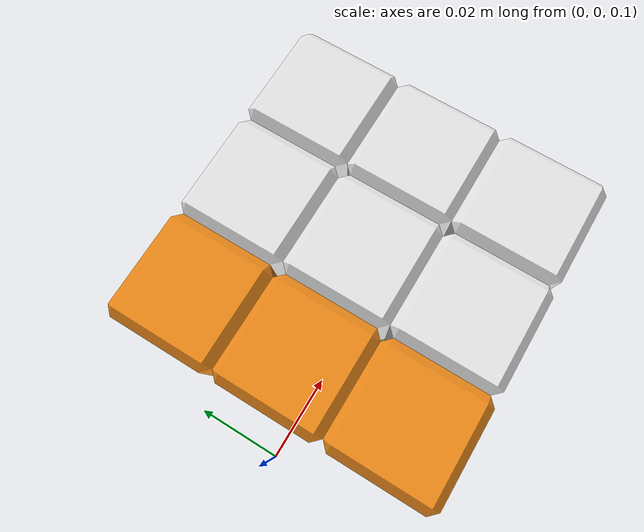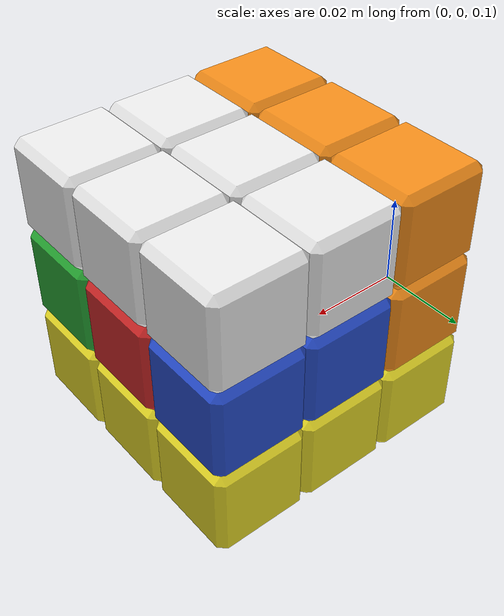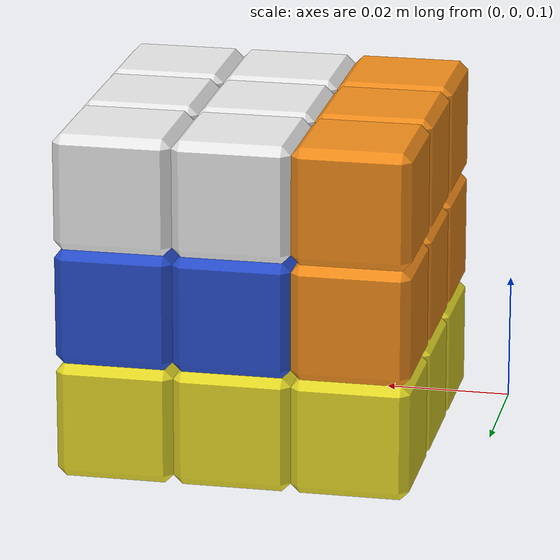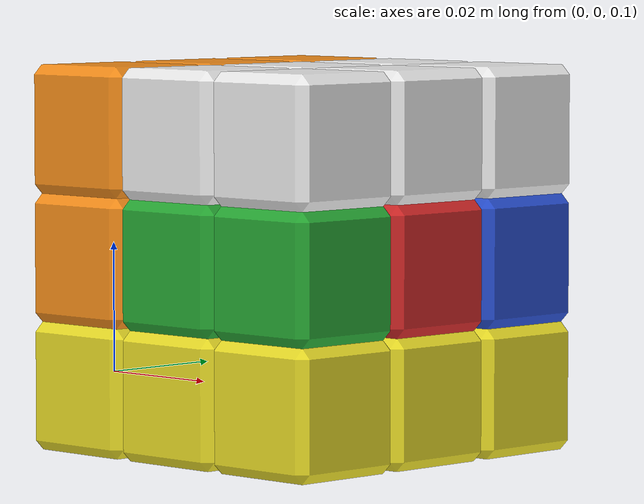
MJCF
<mujoco model="rubiks_cube">
  <compiler angle="radian" autolimits="true"/>
  <size memory="600K"/>

  <default>
    <default class="cubelet">
      <joint type="ball" armature="0.001" damping="0.01" frictionloss="0.001"/>
      <geom type="mesh" condim="3" friction="1.0 0.01 0.001" quat="1 0 0 1"
        mesh="cubelet" solref="0.01 1" solimp="0.9 0.95 0.001"/>
    </default>
    <default class="core_vis">
      <geom type="sphere" contype="0" conaffinity="0" group="4" size="0.01"/>
    </default>
  </default>

  <asset>
    <texture file="assets/white.png"              gridsize="3 4" gridlayout=".....F......"  rgb1="0 0 0"/>
    <texture file="assets/yellow.png"             gridsize="3 4" gridlayout=".....B......"  rgb1="0 0 0"/>
    <texture file="assets/red.png"                gridsize="3 4" gridlayout=".....D......"  rgb1="0 0 0"/>
    <texture file="assets/orange.png"             gridsize="3 4" gridlayout=".....U......"  rgb1="0 0 0"/>
    <texture file="assets/blue.png"               gridsize="3 4" gridlayout=".....R......"  rgb1="0 0 0"/>
    <texture file="assets/green.png"              gridsize="3 4" gridlayout=".....L......"  rgb1="0 0 0"/>
    <texture file="assets/red_white.png"          gridsize="3 4" gridlayout=".....DF....."  rgb1="0 0 0"/>
    <texture file="assets/orange_white.png"       gridsize="3 4" gridlayout=".....UF....."  rgb1="0 0 0"/>
    <texture file="assets/blue_white.png"         gridsize="3 4" gridlayout=".....RF....."  rgb1="0 0 0"/>
    <texture file="assets/green_white.png"        gridsize="3 4" gridlayout=".....LF....."  rgb1="0 0 0"/>
    <texture file="assets/red_yellow.png"         gridsize="3 4" gridlayout=".....DB....."  rgb1="0 0 0"/>
    <texture file="assets/orange_yellow.png"      gridsize="3 4" gridlayout=".....UB....."  rgb1="0 0 0"/>
    <texture file="assets/blue_yellow.png"        gridsize="3 4" gridlayout=".....RB....."  rgb1="0 0 0"/>
    <texture file="assets/green_yellow.png"       gridsize="3 4" gridlayout=".....LB....."  rgb1="0 0 0"/>
    <texture file="assets/orange_red.png"         gridsize="3 4" gridlayout=".....UD....."  rgb1="0 0 0"/>
    <texture file="assets/blue_red.png"           gridsize="3 4" gridlayout=".....RD....."  rgb1="0 0 0"/>
    <texture file="assets/green_red.png"          gridsize="3 4" gridlayout=".....LD....."  rgb1="0 0 0"/>
    <texture file="assets/blue_orange.png"        gridsize="3 4" gridlayout=".....RU....."  rgb1="0 0 0"/>
    <texture file="assets/green_orange.png"       gridsize="3 4" gridlayout=".....LU....."  rgb1="0 0 0"/>
    <texture file="assets/blue_red_white.png"     gridsize="3 4" gridlayout=".....RDF...."  rgb1="0 0 0"/>
    <texture file="assets/green_red_white.png"    gridsize="3 4" gridlayout=".....LDF...."  rgb1="0 0 0"/>
    <texture file="assets/blue_orange_white.png"  gridsize="3 4" gridlayout=".....RUF...."  rgb1="0 0 0"/>
    <texture file="assets/green_orange_white.png" gridsize="3 4" gridlayout=".....LUF...."  rgb1="0 0 0"/>
    <texture file="assets/blue_red_yellow.png"    gridsize="3 4" gridlayout=".....RDB...."  rgb1="0 0 0"/>
    <texture file="assets/green_red_yellow.png"   gridsize="3 4" gridlayout=".....LDB...."  rgb1="0 0 0"/>
    <texture file="assets/blue_orange_yellow.png" gridsize="3 4" gridlayout=".....RUB...."  rgb1="0 0 0"/>
    <texture file="assets/green_orange_yellow.png" gridsize="3 4" gridlayout=".....LUB...." rgb1="0 0 0"/>

    <material name="white"               texture="white"/>
    <material name="yellow"              texture="yellow"/>
    <material name="red"                 texture="red"/>
    <material name="orange"              texture="orange"/>
    <material name="blue"                texture="blue"/>
    <material name="green"               texture="green"/>
    <material name="red_white"           texture="red_white"/>
    <material name="orange_white"        texture="orange_white"/>
    <material name="blue_white"          texture="blue_white"/>
    <material name="green_white"         texture="green_white"/>
    <material name="red_yellow"          texture="red_yellow"/>
    <material name="orange_yellow"       texture="orange_yellow"/>
    <material name="blue_yellow"         texture="blue_yellow"/>
    <material name="green_yellow"        texture="green_yellow"/>
    <material name="orange_red"          texture="orange_red"/>
    <material name="blue_red"            texture="blue_red"/>
    <material name="green_red"           texture="green_red"/>
    <material name="blue_orange"         texture="blue_orange"/>
    <material name="green_orange"        texture="green_orange"/>
    <material name="blue_red_white"      texture="blue_red_white"/>
    <material name="green_red_white"     texture="green_red_white"/>
    <material name="blue_orange_white"   texture="blue_orange_white"/>
    <material name="green_orange_white"  texture="green_orange_white"/>
    <material name="blue_red_yellow"     texture="blue_red_yellow"/>
    <material name="green_red_yellow"    texture="green_red_yellow"/>
    <material name="blue_orange_yellow"  texture="blue_orange_yellow"/>
    <material name="green_orange_yellow" texture="green_orange_yellow"/>

    <mesh name="cubelet"
      vertex="0.008075 0.0095 -0.008075 -0.008075 0.0095 -0.008075 0.008075 0.0095 0.008075 -0.008075 0.0095 0.008075 -0.0095 0.008075 -0.008075 -0.0095 -0.008075 -0.008075 -0.0095 0.008075 0.008075 -0.0095 -0.008075 0.008075 0.008075 -0.0095 -0.008075 0.008075 -0.0095 0.008075 -0.008075 -0.0095 -0.008075 -0.008075 -0.0095 0.008075 0.0095 0.008075 0.008075 0.0095 -0.008075 0.008075 0.0095 0.008075 -0.008075 0.0095 -0.008075 -0.008075 0.008075 0.008075 0.0095 -0.008075 0.008075 0.0095 0.008075 -0.008075 0.0095 -0.008075 -0.008075 0.0095 0.008075 -0.008075 -0.0095 -0.008075 -0.008075 -0.0095 0.008075 0.008075 -0.0095 -0.008075 0.008075 -0.0095"/>
  </asset>

  <worldbody>
    <body name="mocap_anchor" mocap="true" pos="0.04 0.001 0.12" quat="1 0 0 0">
      <geom type="sphere" size="0.005" rgba="0 1 0 0.5" contype="0" conaffinity="0"/>
    </body>
    <body name="core" pos="0.04 0.001 0.12" quat="1 0 0 0" childclass="cubelet">
      <freejoint name="cube_freejoint"/>
      <geom class="core_vis"/>
      <!-- overall collision box for grasping -->
      <geom name="cube_collision" type="box" size="0.0285 0.0285 0.0285" mass="0.108"
            contype="2" conaffinity="2" group="3"/>
      <site name="cube_center" pos="0 0 0" group="4"/>

      <!-- Face centers (hinge joints, passive — no motors) -->
      <body name="pX">
        <joint name="pX" type="hinge" axis="1 0 0"/>
        <geom material="red"    pos="0.019 0 0"/>
      </body>
      <body name="nX">
        <joint name="nX" type="hinge" axis="-1 0 0"/>
        <geom material="orange" pos="-0.019 0 0"/>
      </body>
      <body name="pY">
        <joint name="pY" type="hinge" axis="0 1 0"/>
        <geom material="blue"   pos="0 0.019 0"/>
      </body>
      <body name="nY">
        <joint name="nY" type="hinge" axis="0 -1 0"/>
        <geom material="green"  pos="0 -0.019 0"/>
      </body>
      <body name="pZ">
        <joint name="pZ" type="hinge" axis="0 0 1"/>
        <geom material="white"  pos="0 0 0.019"/>
      </body>
      <body name="nZ">
        <joint name="nZ" type="hinge" axis="0 0 -1"/>
        <geom material="yellow" pos="0 0 -0.019"/>
      </body>

      <!-- Edge pieces (ball joints) -->
      <body name="pX_pY">
        <joint name="pX_pY"/>
        <geom material="blue_red"    pos="0.019 0.019 0"/>
      </body>
      <body name="nY_pX">
        <joint name="nY_pX"/>
        <geom material="green_red"   pos="0.019 -0.019 0"/>
      </body>
      <body name="pX_pZ">
        <joint name="pX_pZ"/>
        <geom material="red_white"   pos="0.019 0 0.019"/>
      </body>
      <body name="nZ_pX">
        <joint name="nZ_pX"/>
        <geom material="red_yellow"  pos="0.019 0 -0.019"/>
      </body>
      <body name="nX_pY">
        <joint name="nX_pY"/>
        <geom material="blue_orange"  pos="-0.019 0.019 0"/>
      </body>
      <body name="nX_nY">
        <joint name="nX_nY"/>
        <geom material="green_orange" pos="-0.019 -0.019 0"/>
      </body>
      <body name="nX_pZ">
        <joint name="nX_pZ"/>
        <geom material="orange_white" pos="-0.019 0 0.019"/>
      </body>
      <body name="nX_nZ">
        <joint name="nX_nZ"/>
        <geom material="orange_yellow" pos="-0.019 0 -0.019"/>
      </body>
      <body name="pY_pZ">
        <joint name="pY_pZ"/>
        <geom material="blue_white"   pos="0 0.019 0.019"/>
      </body>
      <body name="nZ_pY">
        <joint name="nZ_pY"/>
        <geom material="blue_yellow"  pos="0 0.019 -0.019"/>
      </body>
      <body name="nY_pZ">
        <joint name="nY_pZ"/>
        <geom material="green_white"  pos="0 -0.019 0.019"/>
      </body>
      <body name="nY_nZ">
        <joint name="nY_nZ"/>
        <geom material="green_yellow" pos="0 -0.019 -0.019"/>
      </body>

      <!-- Corner pieces (ball joints) -->
      <body name="pX_pY_pZ">
        <joint name="pX_pY_pZ"/>
        <geom material="blue_red_white"      pos="0.019 0.019 0.019"/>
      </body>
      <body name="nZ_pX_pY">
        <joint name="nZ_pX_pY"/>
        <geom material="blue_red_yellow"     pos="0.019 0.019 -0.019"/>
      </body>
      <body name="nY_pX_pZ">
        <joint name="nY_pX_pZ"/>
        <geom material="green_red_white"     pos="0.019 -0.019 0.019"/>
      </body>
      <body name="nY_nZ_pX">
        <joint name="nY_nZ_pX"/>
        <geom material="green_red_yellow"    pos="0.019 -0.019 -0.019"/>
      </body>
      <body name="nX_pY_pZ">
        <joint name="nX_pY_pZ"/>
        <geom material="blue_orange_white"   pos="-0.019 0.019 0.019"/>
      </body>
      <body name="nX_nZ_pY">
        <joint name="nX_nZ_pY"/>
        <geom material="blue_orange_yellow"  pos="-0.019 0.019 -0.019"/>
      </body>
      <body name="nX_nY_pZ">
        <joint name="nX_nY_pZ"/>
        <geom material="green_orange_white"  pos="-0.019 -0.019 0.019"/>
      </body>
      <body name="nX_nY_nZ">
        <joint name="nX_nY_nZ"/>
        <geom material="green_orange_yellow" pos="-0.019 -0.019 -0.019"/>
      </body>
    </body>
  </worldbody>

  <equality>
    <weld name="cube_freeze" active="false" body1="core" body2="mocap_anchor"
      solimp="0.99 0.999 0.001" solref="0.01 1"/>
  </equality>

</mujoco>
